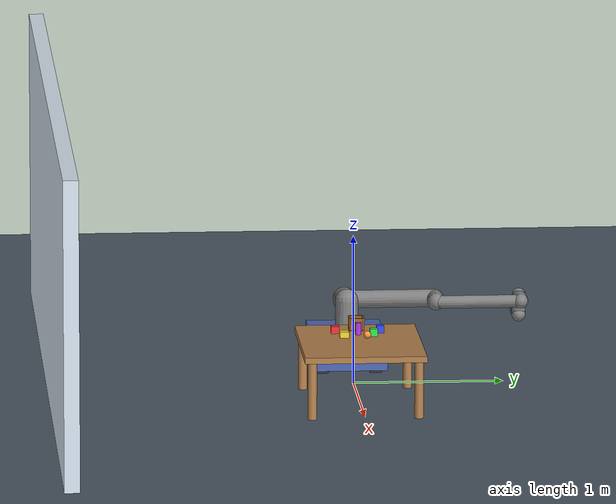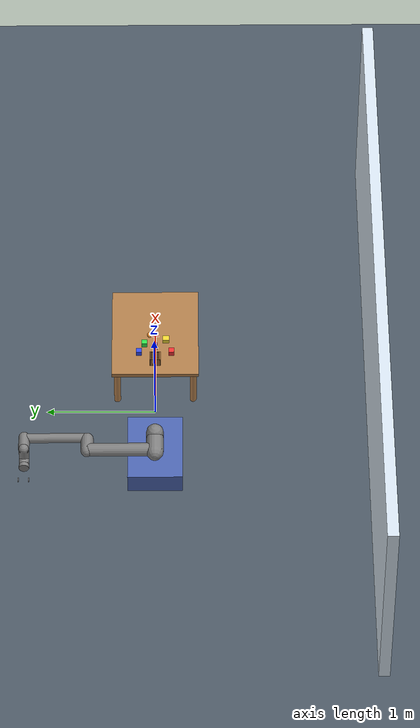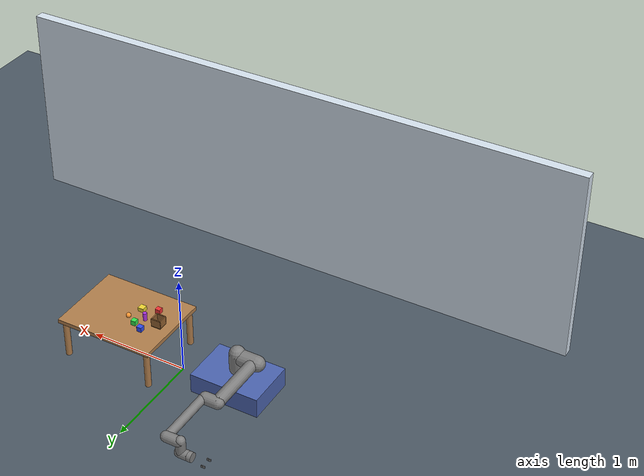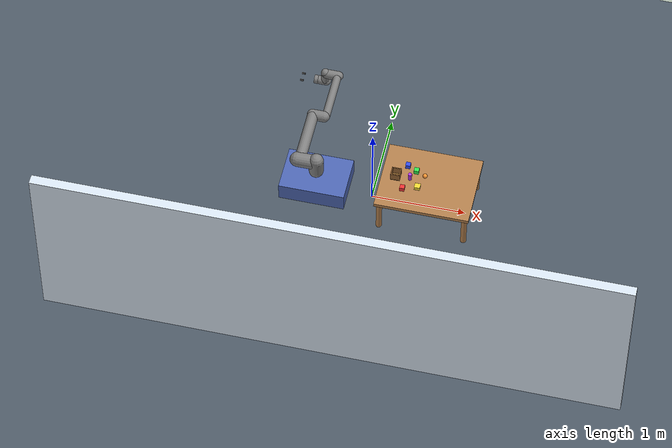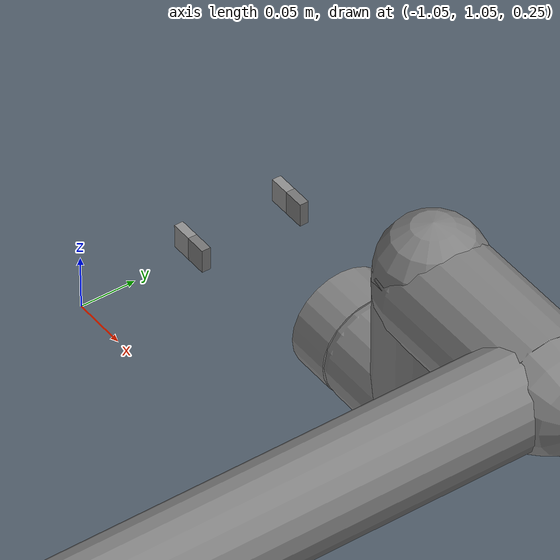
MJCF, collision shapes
<mujoco model="perception_test_scene">
  <!-- Include the robot with gripper -->
  <include file="ur_gripper.xml" pos="-0.6 0 0.3"/>

  <compiler angle="radian" autolimits="true"/>
  <option timestep="0.002" gravity="0 0 -9.81"/>

  <visual>
    <headlight diffuse="0.4 0.4 0.4" ambient="0.2 0.2 0.2" specular="0 0 0"/>
    <rgba haze="0.15 0.25 0.35 1"/>
    <global azimuth="120" elevation="-20" offwidth="640" offheight="480"/>
  </visual>

  <statistic center="0.4 0 0.5" extent="1.2"/>

  <asset>
    <texture type="skybox" builtin="gradient" rgb1="0.3 0.5 0.8" rgb2="0.1 0.2 0.4" width="512" height="3072"/>
    <texture type="2d" name="lab_floor" builtin="checker" rgb1="0.35 0.4 0.45" rgb2="0.25 0.3 0.35" width="512" height="512" mark="cross" markrgb="0.8 0.8 0.9"/>
    <material name="groundplane" texture="lab_floor" texrepeat="20 20" reflectance="0.3" shininess="0.1"/>
    <material name="table_mat" rgba="0.7 0.5 0.3 1" reflectance="0.4" shininess="0.3"/>
    <material name="pedestal_mat" rgba="0.3 0.4 0.7 1" reflectance="0.5" shininess="0.4"/>
    <material name="wheel_mat" rgba="0.2 0.2 0.25 1" reflectance="0.8" shininess="0.9"/>
    <material name="red_block" rgba="0.95 0.2 0.2 1" reflectance="0.3" shininess="0.5"/>
    <material name="blue_block" rgba="0.2 0.3 0.95 1" reflectance="0.3" shininess="0.5"/>
    <material name="green_block" rgba="0.2 0.9 0.3 1" reflectance="0.3" shininess="0.5"/>
    <material name="yellow_block" rgba="0.95 0.85 0.2 1" reflectance="0.3" shininess="0.5"/>
    <material name="purple_cylinder" rgba="0.7 0.2 0.9 1" reflectance="0.3" shininess="0.5"/>
    <material name="orange_ball" rgba="1.0 0.6 0.2 1" reflectance="0.4" shininess="0.6"/>
    <material name="lab_wall" rgba="0.85 0.9 0.95 1" reflectance="0.1"/>
    <material name="poster_mat" rgba="1 1 1 1"/>

    <!-- Simple bucket materials -->
    <material name="bucket_wall_mat" rgba="0.6 0.4 0.2 0.7" specular="0.3" shininess="0.2"/>
    <material name="bucket_bottom_mat" rgba="0.5 0.35 0.15 1" specular="0.2" shininess="0.1"/>
  </asset>

  <worldbody>
    <!-- Softer lighting to reduce shadows -->
    <light pos="0 0 4" dir="0 0 -1" directional="true" diffuse="0.5 0.5 0.5"/>
    <light pos="2 2 3" dir="-0.5 -0.5 -1" diffuse="0.25 0.25 0.25"/>
    <light pos="-2 2 3" dir="0.5 -0.5 -1" diffuse="0.2 0.2 0.2"/>
    <light pos="0 -2 3" dir="0 0.5 -1" diffuse="0.2 0.2 0.2"/>
    <geom name="floor" size="10 10 0.01" type="plane" material="groundplane"/>

    <!-- Robot pedestal with prism base and wheels -->
    <body name="robot_pedestal" pos="-0.6 0 0.125">
      <geom name="pedestal_base" type="box" size="0.35 0.25 0.1" pos="0 0 0" material="pedestal_mat"/>
      <!-- Wheels -->
      <geom name="wheel_fl" type="cylinder" size="0.05 0.02" pos="0.25 0.18 -0.1" euler="0 1.5708 0" material="wheel_mat"/>
      <geom name="wheel_fr" type="cylinder" size="0.05 0.02" pos="0.25 -0.18 -0.1" euler="0 1.5708 0" material="wheel_mat"/>
      <geom name="wheel_bl" type="cylinder" size="0.05 0.02" pos="-0.25 0.18 -0.1" euler="0 1.5708 0" material="wheel_mat"/>
      <geom name="wheel_br" type="cylinder" size="0.05 0.02" pos="-0.25 -0.18 -0.1" euler="0 1.5708 0" material="wheel_mat"/>
    </body>

    <!-- Main work table (larger, in front of robot) -->
    <body name="table" pos="0.6 0 0.4">
      <geom name="table_top" type="box" size="0.5 0.4 0.02" pos="0 0 0" material="table_mat"/>
      <geom name="table_leg1" type="cylinder" size="0.03 0.2" pos="0.45 0.35 -0.2" material="table_mat"/>
      <geom name="table_leg2" type="cylinder" size="0.03 0.2" pos="0.45 -0.35 -0.2" material="table_mat"/>
      <geom name="table_leg3" type="cylinder" size="0.03 0.2" pos="-0.45 0.35 -0.2" material="table_mat"/>
      <geom name="table_leg4" type="cylinder" size="0.03 0.2" pos="-0.45 -0.35 -0.2" material="table_mat"/>
    </body>

    <!-- Graspable objects on main table -->
    <body name="red_block" pos="0.35 -0.15 0.445">
      <freejoint name="red_block_free"/>
      <geom name="red_block_geom" type="box" size="0.025 0.025 0.025" material="red_block"
            condim="6" friction="1 0.5 0.0001" solimp="0.99 0.999 0.001" solref="0.01 1"/>
      <inertial pos="0 0 0" mass="0.05" diaginertia="0.00001 0.00001 0.00001"/>
    </body>

    <body name="blue_block" pos="0.35 0.15 0.445">
      <freejoint name="blue_block_free"/>
      <geom name="blue_block_geom" type="box" size="0.025 0.025 0.025" material="blue_block"
            condim="6" friction="1 0.5 0.0001" solimp="0.99 0.999 0.001" solref="0.01 1"/>
      <inertial pos="0 0 0" mass="0.05" diaginertia="0.00001 0.00001 0.00001"/>
    </body>

    <body name="green_block" pos="0.45 0.1 0.445">
      <freejoint name="green_block_free"/>
      <geom name="green_block_geom" type="box" size="0.025 0.025 0.025" material="green_block"
            condim="6" friction="1 0.5 0.0001" solimp="0.99 0.999 0.001" solref="0.01 1"/>
      <inertial pos="0 0 0" mass="0.05" diaginertia="0.00001 0.00001 0.00001"/>
    </body>

    <body name="yellow_block" pos="0.5 -0.1 0.445">
      <freejoint name="yellow_block_free"/>
      <geom name="yellow_block_geom" type="box" size="0.03 0.03 0.02" material="yellow_block"
            condim="6" friction="1 0.5 0.0001" solimp="0.99 0.999 0.001" solref="0.01 1"/>
      <inertial pos="0 0 0" mass="0.04" diaginertia="0.00001 0.00001 0.00001"/>
    </body>

    <body name="purple_cylinder" pos="0.4 0 0.46">
      <freejoint name="purple_cylinder_free"/>
      <geom name="purple_cylinder_geom" type="cylinder" size="0.02 0.04" material="purple_cylinder"
            condim="6" friction="1 0.5 0.0001" solimp="0.99 0.999 0.001" solref="0.01 1"/>
      <inertial pos="0 0 0" mass="0.06" diaginertia="0.00001 0.00001 0.00001"/>
    </body>

    <!-- Orange ball on the table -->
    <body name="orange_ball" pos="0.55 0.05 0.45">
      <freejoint name="orange_ball_free"/>
      <geom name="orange_ball_geom" type="sphere" size="0.025" material="orange_ball"
            condim="6" friction="1 0.5 0.0001" solimp="0.99 0.999 0.001" solref="0.01 1"/>
      <inertial pos="0 0 0" mass="0.04" diaginertia="0.00001 0.00001 0.00001"/>
    </body>

    <!-- Bird's eye camera - directly above table, centered on x -->
    <body name="camera1" pos="0.6 0.0 1.8">
        <camera name="camera1" fovy="50" pos="0 0 0" xyaxes="1 0 0 0 0 1"/>
    </body>

    <!-- Front camera - looking at table from front (negative y side) -->
    <body name="camera2" pos="0.550 -1.473 1.462">
        <camera name="camera2" fovy="60" pos="0 0 0" xyaxes="1.000 0.013 0.000 -0.008 0.612 0.791"/>
    </body>

    <!-- Back camera - looking at table from back (positive y side) -->
    <body name="camera3" pos="0.615 1.473 1.024">
        <camera name="camera3" fovy="60" pos="0 0 0" xyaxes="-1.000 0.017 0.000 -0.008 -0.438 0.899"/>
    </body>

    <!-- Lab decorations - keeping only the cloudy back wall -->
    <body name="back_wall" pos="0 -2 1">
      <geom name="wall_back" type="box" size="3 0.05 1" material="lab_wall"/>
    </body>

    <!-- Simple primitive bucket (clearly hollow, no top plane) -->
    <!-- Square bucket ~10cm x 10cm x 8cm tall, positioned on table surface (z=0.42) -->
    <body name="bucket" pos="0.25 0 0.42">
      <!-- Bottom plate (visual + collision) -->
      <geom name="bucket_bottom" type="box" size="0.05 0.05 0.003" pos="0 0 0.003"
            material="bucket_bottom_mat" condim="6" friction="0.8 0.3 0.001"/>

      <!-- Wall segments (4 boxes forming hollow bucket walls - visual + collision) -->
      <!-- Each wall: 10cm wide (full side), 0.5cm thick, 8cm tall -->
      <geom name="bucket_wall_front" type="box" size="0.05 0.005 0.04" pos="0 0.045 0.046"
            material="bucket_wall_mat" condim="6" friction="0.8 0.3 0.001"/>
      <geom name="bucket_wall_back" type="box" size="0.05 0.005 0.04" pos="0 -0.045 0.046"
            material="bucket_wall_mat" condim="6" friction="0.8 0.3 0.001"/>
      <geom name="bucket_wall_left" type="box" size="0.005 0.045 0.04" pos="-0.045 0 0.046"
            material="bucket_wall_mat" condim="6" friction="0.8 0.3 0.001"/>
      <geom name="bucket_wall_right" type="box" size="0.005 0.045 0.04" pos="0.045 0 0.046"
            material="bucket_wall_mat" condim="6" friction="0.8 0.3 0.001"/>

      <!-- Target site inside bucket for placement -->
      <site name="bucket_target" pos="0 0 0.05" size="0.04 0.04 0.001" rgba="0 0 0 0" type="box"/>
    </body>

    <body name="keypoint_markers" pos="0 0 0">
      <site name="keypoint_0" pos="0 0 -10" size="0.01" rgba="1 0 0 0" type="sphere"/>
      <site name="keypoint_1" pos="0 0 -10" size="0.01" rgba="1 0.2 0 0" type="sphere"/>
      <site name="keypoint_2" pos="0 0 -10" size="0.01" rgba="1 0.4 0 0" type="sphere"/>
      <site name="keypoint_3" pos="0 0 -10" size="0.01" rgba="1 0.6 0 0" type="sphere"/>
      <site name="keypoint_4" pos="0 0 -10" size="0.01" rgba="1 0.8 0 0" type="sphere"/>
      <site name="keypoint_5" pos="0 0 -10" size="0.01" rgba="0.8 1 0 0" type="sphere"/>
      <site name="keypoint_6" pos="0 0 -10" size="0.01" rgba="0.6 1 0 0" type="sphere"/>
      <site name="keypoint_7" pos="0 0 -10" size="0.01" rgba="0.4 1 0 0" type="sphere"/>
      <site name="keypoint_8" pos="0 0 -10" size="0.01" rgba="0.2 1 0 0" type="sphere"/>
      <site name="keypoint_9" pos="0 0 -10" size="0.01" rgba="0 1 0 0" type="sphere"/>
      <site name="keypoint_10" pos="0 0 -10" size="0.01" rgba="0 1 0.2 0" type="sphere"/>
    </body>

  </worldbody>

  <keyframe>
    <!-- Home position with robot upright and objects on table -->
    <!-- Robot joints (6) + gripper joints (8) + 6 objects with freejoint (7 DOF each = 42) = 56 total -->
    <key name="home"
         qpos="0 -1.5708 1.5708 -1.5708 -1.5708 0  0 0 0 0 0 0 0 0  0.35 -0.15 0.445 1 0 0 0  0.35 0.15 0.445 1 0 0 0  0.45 0.1 0.445 1 0 0 0  0.5 -0.1 0.445 1 0 0 0  0.4 0 0.46 1 0 0 0  0.55 0.05 0.45 1 0 0 0"
         ctrl="0 -1.5708 1.5708 -1.5708 -1.5708 0  0"/>
  </keyframe>

</mujoco>

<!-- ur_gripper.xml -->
<mujoco model="ur_gripper">
<compiler angle="radian" meshdir="../../mujoco_menagerie/universal_robots_ur10e/assets" autolimits="true"/>
<option impratio="10" integrator="RK4"/>
<default class="main">
<default class="ur10e">
<material shininess="0.25"/>
<joint range="-6.28319 6.28319" armature="0.1"/>
<general ctrlrange="-6.2831 6.2831" biastype="affine" gainprm="5000 0 0 0 0 0 0 0 0 0" biasprm="0 -5000 -500 0 0 0 0 0 0 0"/>
<default class="size4">
<joint damping="10"/>
<general forcerange="-330 330"/>
</default>
<default class="size3">
<joint damping="5"/>
<general forcerange="-150 150"/>
<default class="size3_limited">
<joint range="-3.1415 3.1415"/>
<general ctrlrange="-3.1415 3.1415"/>
</default>
</default>
<default class="size2">
<joint damping="2"/>
<general forcerange="-56 56"/>
</default>
<default class="visual">
<geom type="mesh" contype="0" conaffinity="0" group="2"/>
</default>
<default class="collision">
<geom type="capsule" group="3"/>
<default class="eef_collision">
<geom type="cylinder"/>
</default>
</default>
</default>
<default class="2f85">
<mesh scale="0.001 0.001 0.001"/>
<general biastype="affine"/>
<default class="driver">
<joint solreflimit="0.005 1" solimplimit="0.95 0.99 0.001 0.5 2" range="0 0.8" armature="0.005" damping="0.1"/>
</default>
<default class="follower">
<joint solreflimit="0.005 1" solimplimit="0.95 0.99 0.001 0.5 2" range="-0.872664 0.872664"/>
</default>
<default class="spring_link">
<joint springref="2.62" stiffness="0.05" range="-0.296706 0.8" damping="0.00125"/>
</default>
<default class="coupler">
<joint solreflimit="0.005 1" solimplimit="0.95 0.99 0.001 0.5 2" range="-1.57 0"/>
</default>
<default class="visual2">
<geom type="mesh" contype="0" conaffinity="0" group="2"/>
</default>
<default class="collision2">
<geom type="mesh" group="3"/>
<default class="pad_box1">
<geom size="0.011 0.004 0.009375" type="box" priority="1" friction="0.7 0.005 0.0001" solref="0.004 1" solimp="0.95 0.99 0.001 0.5 2" rgba="0.55 0.55 0.55 1"/>
</default>
<default class="pad_box2">
<geom size="0.011 0.004 0.009375" type="box" priority="1" friction="0.6 0.005 0.0001" solref="0.004 1" solimp="0.95 0.99 0.001 0.5 2" rgba="0.45 0.45 0.45 1"/>
</default>
</default>
</default>
</default>
<asset>
<material name="black" class="ur10e" rgba="0.033 0.033 0.033 1"/>
<material name="jointgray" class="ur10e" rgba="0.278 0.278 0.278 1"/>
<material name="linkgray" class="ur10e" rgba="0.82 0.82 0.82 1"/>
<material name="urblue" class="ur10e" rgba="0.49 0.678 0.8 1"/>
<material name="metal" rgba="0.58 0.58 0.58 1"/>
<material name="silicone" rgba="0.1882 0.1882 0.1882 1"/>
<material name="gray" rgba="0.4627 0.4627 0.4627 1"/>
<material name="black2" rgba="0.149 0.149 0.149 1"/>
<mesh name="base_0" file="base_0.obj"/>
<mesh name="base_1" file="base_1.obj"/>
<mesh name="shoulder_0" file="shoulder_0.obj"/>
<mesh name="shoulder_1" file="shoulder_1.obj"/>
<mesh name="shoulder_2" file="shoulder_2.obj"/>
<mesh name="upperarm_0" file="upperarm_0.obj"/>
<mesh name="upperarm_1" file="upperarm_1.obj"/>
<mesh name="upperarm_2" file="upperarm_2.obj"/>
<mesh name="upperarm_3" file="upperarm_3.obj"/>
<mesh name="forearm_0" file="forearm_0.obj"/>
<mesh name="forearm_1" file="forearm_1.obj"/>
<mesh name="forearm_2" file="forearm_2.obj"/>
<mesh name="forearm_3" file="forearm_3.obj"/>
<mesh name="wrist1_0" file="wrist1_0.obj"/>
<mesh name="wrist1_1" file="wrist1_1.obj"/>
<mesh name="wrist1_2" file="wrist1_2.obj"/>
<mesh name="wrist2_0" file="wrist2_0.obj"/>
<mesh name="wrist2_1" file="wrist2_1.obj"/>
<mesh name="wrist2_2" file="wrist2_2.obj"/>
<mesh name="wrist3" file="wrist3.obj"/>
<mesh name="base_mount" class="2f85" file="../../robotiq_2f85/assets/base_mount.stl"/>
<mesh name="base" class="2f85" file="../../robotiq_2f85/assets/base.stl"/>
<mesh name="driver" class="2f85" file="../../robotiq_2f85/assets/driver.stl"/>
<mesh name="coupler" class="2f85" file="../../robotiq_2f85/assets/coupler.stl"/>
<mesh name="follower" class="2f85" file="../../robotiq_2f85/assets/follower.stl"/>
<mesh name="pad" class="2f85" file="../../robotiq_2f85/assets/pad.stl"/>
<mesh name="silicone_pad" class="2f85" file="../../robotiq_2f85/assets/silicone_pad.stl"/>
<mesh name="spring_link" class="2f85" file="../../robotiq_2f85/assets/spring_link.stl"/>
</asset>
<worldbody>
<light name="spotlight" target="wrist_2_link" pos="0 -1 2" dir="0 0 -1" mode="targetbodycom"/>
<body name="base" childclass="ur10e" pos="-0.6 0 0.225" quat="0.707107 0 0 0.707107" gravcomp="0">
<inertial pos="0 0 0" mass="4" diaginertia="0.00610633 0.00610633 0.01125"/>
<geom class="visual" material="black" mesh="base_0"/>
<geom class="visual" material="jointgray" mesh="base_1"/>
<body name="shoulder_link" pos="0 0 0.181" gravcomp="0">
<inertial pos="0 0 0" mass="7.778" diaginertia="0.0314743 0.0314743 0.0218756"/>
<joint name="shoulder_pan_joint" class="size4" pos="0 0 0"  axis="0 0 1"/>
<geom class="visual" material="urblue" mesh="shoulder_0"/>
<geom class="visual" material="black" mesh="shoulder_1"/>
<geom class="visual" material="jointgray" mesh="shoulder_2"/>
<geom class="collision" size="0.078 0.08" pos="0 0 -0.05"/>
<body name="upper_arm_link" pos="0 0.176 0" quat="0.707107 0 0.707107 0" gravcomp="0">
<inertial pos="0 0 0.3065" mass="12.93" diaginertia="0.423074 0.423074 0.0363656"/>
<joint name="shoulder_lift_joint" class="size4" pos="0 0 0" axis="0 1 0"/>
<geom class="visual" material="black" mesh="upperarm_0"/>
<geom class="visual" material="jointgray" mesh="upperarm_1"/>
<geom class="visual" material="urblue" mesh="upperarm_2"/>
<geom class="visual" material="linkgray" mesh="upperarm_3"/>
<geom class="collision" size="0.078 0.08" pos="0 -0.05 0" quat="0.707107 0.707107 0 0"/>
<geom class="collision" size="0.06 0.3" pos="0 0 0.3"/>
<body name="forearm_link" pos="0 -0.137 0.613" gravcomp="0">
<inertial pos="0 0 0.2855" mass="3.87" diaginertia="0.11059 0.11059 0.0108844"/>
<joint name="elbow_joint" class="size3_limited" pos="0 0 0" axis="0 1 0"/>
<geom class="visual" material="urblue" mesh="forearm_0"/>
<geom class="visual" material="black" mesh="forearm_1"/>
<geom class="visual" material="jointgray" mesh="forearm_2"/>
<geom class="visual" material="linkgray" mesh="forearm_3"/>
<geom class="collision" size="0.058 0.065" pos="0 0.08 0" quat="0.707107 0.707107 0 0"/>
<geom class="collision" size="0.043 0.28" pos="0 0 0.29"/>
<body name="wrist_1_link" pos="0 0 0.571" quat="0.707107 0 0.707107 0" gravcomp="0">
<inertial pos="0 0.135 0" quat="0.5 0.5 -0.5 0.5" mass="1.96" diaginertia="0.0055125 0.00510825 0.00510825"/>
<joint name="wrist_1_joint" class="size2" pos="0 0 0" axis="0 1 0"/>
<geom class="visual" material="black" mesh="wrist1_0"/>
<geom class="visual" material="urblue" mesh="wrist1_1"/>
<geom class="visual" material="jointgray" mesh="wrist1_2"/>
<geom class="collision" size="0.05 0.07" pos="0 0.06 0" quat="0.707107 0.707107 0 0"/>
<body name="wrist_2_link" pos="0 0.135 0" gravcomp="0">
<inertial pos="0 0 0.12" quat="0.5 0.5 -0.5 0.5" mass="1.96" diaginertia="0.0055125 0.00510825 0.00510825"/>
<joint name="wrist_2_joint" class="size2" pos="0 0 0" axis="0 0 1"/>
<geom class="visual" material="black" mesh="wrist2_0"/>
<geom class="visual" material="urblue" mesh="wrist2_1"/>
<geom class="visual" material="jointgray" mesh="wrist2_2"/>
<geom class="collision" size="0.046 0.065" pos="0 0 0.05"/>
<geom class="collision" size="0.046 0.043" pos="0 0.028 0.12" quat="0.707107 0.707107 0 0"/>
<body name="wrist_3_link" pos="0 0 0.12" gravcomp="0">
<inertial pos="0 0.092 0" quat="0 0.707107 -0.707107 0" mass="0.202" diaginertia="0.000204525 0.000144346 0.000144346"/>
<joint name="wrist_3_joint" class="size2" pos="0 0 0" axis="0 1 0"/>
<geom class="visual" material="linkgray" mesh="wrist3"/>
<geom class="eef_collision" size="0.046 0.02" pos="0 0.097 0" quat="0.707107 0.707107 0 0"/>
<site name="attachment_site" pos="0 0.1 0" quat="-0.707107 0.707107 0 0" size="0.001" group="4" rgba="255 0 0 1"/>
<site name="ft_sensor_site" pos="0 0.1 0" quat="-0.707107 0.707107 0 0" size="0.001" group="5" rgba="0 255 0 0.5"/>
<body name="base_mount" childclass="2f85" pos="0 0.115 0" quat="-0.707107 0.707107 0 0" gravcomp="0">
<geom class="visual2" material="black2" mesh="base_mount"/>
<geom class="collision2" mesh="base_mount"/>
<body name="base2" pos="0 0 0.0038" quat="0.707107 0 0 -0.707107" gravcomp="0">
<inertial pos="0 -2.70394e-05 0.0354675" quat="0.999999 -0.00152849 0 0" mass="0.777441" diaginertia="0.000260285 0.000225381 0.000152708"/>
<geom class="visual2" material="black2" mesh="base"/>
<geom class="collision2" mesh="base"/>
<site name="pinch" pos="0 0 0.145" group="5" rgba="255 0.9 0.9 1"/>
<body name="right_driver" pos="0 0.0306011 0.054904" gravcomp="0">
<inertial pos="2.96931e-12 0.0177547 0.00107314" quat="0.681301 0.732003 0 0" mass="0.00899563" diaginertia="1.72352e-06 1.60906e-06 3.22006e-07"/>
<joint name="right_driver_joint" class="driver" pos="0 0 0" axis="1 0 0" armature="0.01"/>
<geom class="visual2" material="gray" mesh="driver"/>
<geom class="collision2" mesh="driver"/>
<body name="right_coupler" pos="0 0.0315 -0.0041" gravcomp="0">
<inertial pos="0 0.00301209 0.0232175" quat="0.705636 -0.0455904 0.0455904 0.705636" mass="0.0140974" diaginertia="4.16206e-06 3.52216e-06 8.88131e-07"/>
<joint name="right_coupler_joint" class="coupler" pos="0 0 0" axis="1 0 0"/>
<geom class="visual2" material="black2" mesh="coupler"/>
<geom class="collision2" mesh="coupler"/>
</body>
</body>
<body name="right_spring_link" pos="0 0.0132 0.0609" gravcomp="0">
<inertial pos="-8.65005e-09 0.0181624 0.0212658" quat="0.663403 -0.244737 0.244737 0.663403" mass="0.0221642" diaginertia="8.96853e-06 6.71733e-06 2.63931e-06"/>
<joint name="right_spring_link_joint" class="spring_link" pos="0 0 0" axis="1 0 0" springref="2.62" armature="0.001"/>
<geom class="visual2" material="black2" mesh="spring_link"/>
<geom class="collision2" mesh="spring_link"/>
<body name="right_follower" pos="0 0.055 0.0375" gravcomp="0">
<inertial pos="0 -0.011046 0.0124786" quat="0.986437 0.164143 0 0" mass="0.0125222" diaginertia="2.67415e-06 2.4559e-06 6.02031e-07"/>
<joint name="right_follower_joint" class="follower" pos="0 -0.018 0.0065" axis="1 0 0"/>
<geom class="visual2" material="black2" mesh="follower"/>
<geom class="collision2" mesh="follower"/>
<body name="right_pad" pos="0 -0.0189 0.01352" gravcomp="0">
<inertial pos="0 -0.0025 0.0185" quat="0.707107 0 0 0.707107" mass="0.0035" diaginertia="4.73958e-07 3.64583e-07 1.23958e-07"/>
<geom name="right_pad1" class="pad_box1" pos="0 -0.0026 0.028125" mass="0"/>
<geom name="right_pad2" class="pad_box2" pos="0 -0.0026 0.009375" mass="0"/>
<geom class="visual2" mesh="pad"/>
<body name="right_silicone_pad" pos="0 0 0" gravcomp="0">
<geom class="visual2" material="black2" mesh="silicone_pad"/>
</body>
</body>
</body>
</body>
<body name="left_driver" pos="0 -0.0306011 0.054904" quat="0 0 0 1" gravcomp="0">
<inertial pos="0 0.0177547 0.00107314" quat="0.681301 0.732003 0 0" mass="0.00899563" diaginertia="1.72352e-06 1.60906e-06 3.22006e-07"/>
<joint name="left_driver_joint" class="driver" pos="0 0 0" axis="1 0 0" armature="0.01"/>
<geom class="visual2" material="gray" mesh="driver"/>
<geom class="collision2" mesh="driver"/>
<body name="left_coupler" pos="0 0.0315 -0.0041" gravcomp="0">
<inertial pos="0 0.00301209 0.0232175" quat="0.705636 -0.0455904 0.0455904 0.705636" mass="0.0140974" diaginertia="4.16206e-06 3.52216e-06 8.88131e-07"/>
<joint name="left_coupler_joint" class="coupler" pos="0 0 0" axis="1 0 0"/>
<geom class="visual2" material="black2" mesh="coupler"/>
<geom class="collision2" mesh="coupler"/>
</body>
</body>
<body name="left_spring_link" pos="0 -0.0132 0.0609" quat="0 0 0 1" gravcomp="0">
<inertial pos="-8.65005e-09 0.0181624 0.0212658" quat="0.663403 -0.244737 0.244737 0.663403" mass="0.0221642" diaginertia="8.96853e-06 6.71733e-06 2.63931e-06"/>
<joint name="left_spring_link_joint" class="spring_link" pos="0 0 0" axis="1 0 0" springref="2.62" armature="0.001"/>
<geom class="visual2" material="black2" mesh="spring_link"/>
<geom class="collision2" mesh="spring_link"/>
<body name="left_follower" pos="0 0.055 0.0375" gravcomp="0">
<inertial pos="0 -0.011046 0.0124786" quat="0.986437 0.164143 0 0" mass="0.0125222" diaginertia="2.67415e-06 2.4559e-06 6.02031e-07"/>
<joint name="left_follower_joint" class="follower" pos="0 -0.018 0.0065" axis="1 0 0"/>
<geom class="visual2" material="black2" mesh="follower"/>
<geom class="collision2" mesh="follower"/>
<body name="left_pad" pos="0 -0.0189 0.01352" gravcomp="0">
<inertial pos="0 -0.0025 0.0185" quat="0.707107 0 0 0.707107" mass="0.0035" diaginertia="4.73958e-07 3.64583e-07 1.23958e-07"/>
<geom name="left_pad1" class="pad_box1" pos="0 -0.0026 0.028125" mass="0"/>
<geom name="left_pad2" class="pad_box2" pos="0 -0.0026 0.009375" mass="0"/>
<geom class="visual2" mesh="pad"/>
<body name="left_silicone_pad" pos="0 0 0" gravcomp="0">
<geom class="visual2" material="black2" mesh="silicone_pad"/>
</body>
</body>
</body>
</body>
</body>
</body>
</body>
</body>
</body>
</body>
</body>
</body>
</body>
</worldbody>
<contact>
<exclude body1="wrist_3_link" body2="right_driver"/>
<exclude body1="wrist_3_link" body2="right_coupler"/>
<exclude body1="wrist_3_link" body2="right_spring_link"/>
<exclude body1="wrist_3_link" body2="right_follower"/>
<exclude body1="wrist_3_link" body2="left_driver"/>
<exclude body1="wrist_3_link" body2="left_coupler"/>
<exclude body1="wrist_3_link" body2="left_spring_link"/>
<exclude body1="wrist_3_link" body2="left_follower"/>
<exclude body1="base2" body2="right_driver"/>
<exclude body1="base2" body2="right_spring_link"/>
<exclude body1="base2" body2="left_driver"/>
<exclude body1="base2" body2="left_spring_link"/>
<exclude body1="right_coupler" body2="right_follower"/>
<exclude body1="left_coupler" body2="left_follower"/>
</contact>
<equality>
<connect body1="right_follower" body2="right_coupler" anchor="0 0 0" solref="0.005 1" solimp="0.95 0.99 0.001 0.5 2"/>
<connect body1="left_follower" body2="left_coupler" anchor="0 0 0" solref="0.005 1" solimp="0.95 0.99 0.001 0.5 2"/>
<joint joint1="right_driver_joint" joint2="left_driver_joint" polycoef="0 1 0 0 0" solref="0.005 1" solimp="0.95 0.99 0.001 0.5 2"/>
</equality>
<tendon>
<fixed name="split">
<joint joint="right_driver_joint" coef="0.5"/>
<joint joint="left_driver_joint" coef="0.5"/>
</fixed>
</tendon>
<actuator>
<general name="shoulder_pan" class="size4" joint="shoulder_pan_joint" actdim="0"/>
<general name="shoulder_lift" class="size4" joint="shoulder_lift_joint" actdim="0"/>
<general name="elbow" class="size3_limited" joint="elbow_joint" actdim="0"/>
<general name="wrist_1" class="size2" joint="wrist_1_joint" actdim="0"/>
<general name="wrist_2" class="size2" joint="wrist_2_joint" actdim="0"/>
<general name="wrist_3" class="size2" joint="wrist_3_joint" actdim="0"/>
<general name="fingers_actuator" class="2f85" tendon="split" ctrlrange="0 255" forcerange="-5 5" actdim="0" gainprm="0.313725 0 0 0 0 0 0 0 0 0" biasprm="0 -100 -10 0 0 0 0 0 0 0"/>
</actuator>
<sensor>
  <!-- Force/Torque sensor at wrist (measures interaction between wrist_3_link and its parent) -->
  <force name="wrist_force" site="ft_sensor_site"/>
  <torque name="wrist_torque" site="ft_sensor_site"/>
  <!-- Gripper motor force (from actuator - this is what real Robotiq gives you) -->
  <actuatorfrc name="gripper_force" actuator="fingers_actuator"/>
  <!-- Joint position sensors for arm -->
  <jointpos name="shoulder_pan_pos" joint="shoulder_pan_joint"/>
  <jointpos name="shoulder_lift_pos" joint="shoulder_lift_joint"/>
  <jointpos name="elbow_pos" joint="elbow_joint"/>
  <jointpos name="wrist_1_pos" joint="wrist_1_joint"/>
  <jointpos name="wrist_2_pos" joint="wrist_2_joint"/>
  <jointpos name="wrist_3_pos" joint="wrist_3_joint"/>
  <!-- Gripper position sensor (encoder - real Robotiq has this) -->
  <jointpos name="gripper_pos" joint="right_driver_joint"/>
</sensor>
</mujoco>
